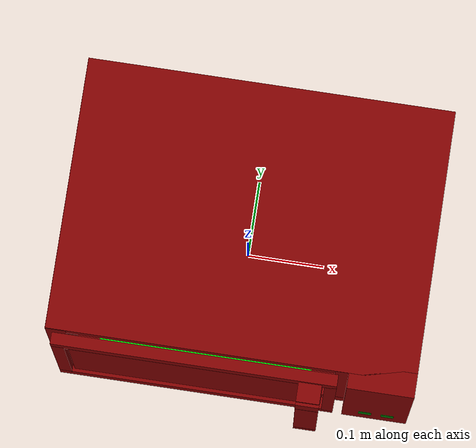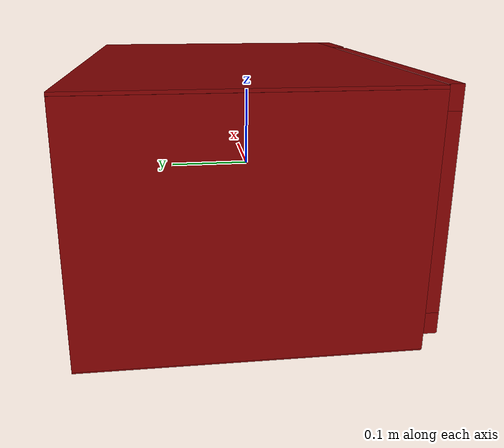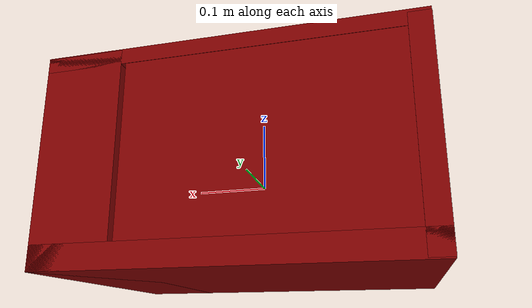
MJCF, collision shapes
<mujoco model="model">
  <compiler angle="radian"/>
  <asset>
    <mesh file="visuals/door.obj" name="door_vis"/>
    <mesh file="visuals/door_Clear.obj" name="door_Clear_vis"/>
    <mesh file="visuals/Body001.obj" name="Body001_vis"/>
    <mesh file="visuals/Disc001.obj" name="Disc001_vis"/>
    <texture file="visuals/T_BC001.png" name="Body001_material" type="2d"/>
    <material name="Body001_material" rgba="1 1 1 1.0" texture="Body001_material" shininess="0.2512328028678894" specular="0.3103448502657381"/>
    <texture file="visuals/T_BC001.png" name="door_material" type="2d"/>
    <material name="door_material" rgba="1 1 1 1.0" texture="door_material" shininess="0.2512328028678894" specular="0.3103448502657381"/>
    <texture file="visuals/T_BC001.png" name="door_Clear_material" type="2d"/>
    <material name="door_Clear_material" rgba="1 1 1 0.8322834968566895" texture="door_Clear_material" shininess="0.2512328028678894" specular="0.3103448502657381"/>
    <texture file="visuals/T_BC001.png" name="Disc001_material" type="2d"/>
    <material name="Disc001_material" rgba="1 1 1 1.0" texture="Disc001_material" shininess="0.2512328028678894" specular="0.3103448502657381"/>
  </asset>
  <default>
    <default class="visual">
      <geom conaffinity="0" contype="0" group="1" type="mesh"/>
    </default>
    <default class="collision">
      <geom group="0" rgba="0.5 0 0 0.5"/>
    </default>
    <default class="spawn">
      <geom group="0" rgba="1 1 1 0.5" contype="0" conaffinity="0"/>
      <site group="0" rgba="1 1 1 0.5"/>
    </default>
    <default class="region">
      <geom group="1" conaffinity="0" contype="0" rgba="0 1 0 0"/>
    </default>
  </default>
  <worldbody>
    <body>
      <body name="object">
        <geom class="collision" type="box" pos="0.21444171667099 -0.17627015709877014 -0.07014863193035126" size="0.008674788288772106 0.00039716094033792615 0.008611914701759815" quat="1.0 0.0 0.0 0.0" name="start_button" rgba="0.0 0.5 0 0.5"/>
        <geom class="collision" type="box" pos="0.1840675175189972 -0.17627015709877014 -0.06980408728122711" size="0.008596837520599365 0.00039477957761846483 0.008594755083322525" quat="1.0 0.0 0.0 0.0" name="stop_button" rgba="0.0 0.5 0 0.5"/>
        <geom class="collision" type="box" pos="-0.03944481909275055 0.012442776001989841 -0.09435480833053589" size="0.14449143409729004 0.14449143409729004 0.0016198419034481049" quat="1.0 0.0 0.0 0.0" name="tray" rgba="0 1 0 0.5"/>
        <geom mesh="Body001_vis" type="mesh" solimp="0.998 0.998 0.001" solref="0.001 1" density="100" friction="0.95 0.3 0.1" class="visual" material="Body001_material"/>
        <geom class="collision" type="box" pos="-0.2279750555753708 0.024643568322062492 -0.0009403529111295938" size="0.01348043605685234 0.1795244961977005 0.1370999813079834" quat="1.0 0.0 0.0 0.0"/>
        <geom class="collision" type="box" pos="0.18898452818393707 0.02464357577264309 -0.0004885747330263257" size="0.05247097462415695 0.1795244961977005 0.1393100768327713" quat="1.0 0.0 0.0 0.0"/>
        <geom class="collision" type="box" pos="0.00023945292923599482 0.024643568322062492 0.1295773833990097" size="0.24121606349945068 0.1795244961977005 0.0102212680503726" quat="1.0 0.0 0.0 0.0"/>
        <geom class="collision" type="box" pos="0.00023945292923599482 0.024643568322062492 -0.12354481220245361" size="0.24121606349945068 0.1795244961977005 0.016253849491477013" quat="1.0 0.0 0.0 0.0"/>
        <geom class="collision" type="box" pos="0.19755516946315765 -0.1586322784423828 0.005857005715370178" size="0.04390033334493637 0.016029980033636093 0.1339416205883026" quat="1.0 0.0 0.0 0.0"/>
        <geom class="collision" type="box" pos="-0.049361418932676315 0.1901172548532486 -0.0009403529111295938" size="0.01348043605685234 0.1795244961977005 0.1370999813079834" quat="0.7071068286895752 0.0 -0.0 -0.7071067690849304"/>
        <body name="door">
          <joint axis="0.0 0.0 1.0" pos="-0.2306995987892151 -0.16482298076152802 0.005739807616919279" limited="true" name="microjoint" range="-1.5707963267948966 0.0" type="hinge" damping="1" frictionloss="1" armature=".01" stiffness="0.05"/>
          <geom mesh="door_vis" type="mesh" solimp="0.998 0.998 0.001" solref="0.001 1" density="100" friction="0.95 0.3 0.1" class="visual" material="door_material"/>
          <geom class="collision" type="box" pos="-0.04522455111145973 -0.16691496968269348 0.12631475925445557" size="0.18625611066818237 0.007747205905616283 0.012893988750874996" quat="1.0 0.0 0.0 0.0"/>
          <geom class="collision" type="box" pos="-0.04522455111145973 -0.16691496968269348 -0.11457281559705734" size="0.18625611066818237 0.007747205905616283 0.012355508282780647" quat="1.0 0.0 0.0 0.0"/>
          <geom class="collision" type="box" pos="0.1332540363073349 -0.16691496968269348 0.00320283230394125" size="0.007829362526535988 0.007747205905616283 0.11479602009057999" quat="1.0 0.0 0.0 0.0"/>
          <geom class="collision" type="box" pos="-0.2230876088142395 -0.16691496968269348 0.004848049022257328" size="0.008393020369112492 0.007747205905616283 0.11352559179067612" quat="1.0 0.0 0.0 0.0"/>
          <geom class="collision" type="box" pos="0.10684141516685486 -0.2003488391637802 -0.11208666861057281" size="0.01529182493686676 0.0038424746599048376 0.007795459590852261" quat="1.0 0.0 0.0 0.0"/>
          <geom class="collision" type="box" pos="0.10684140026569366 -0.20060667395591736 0.106754370033741" size="0.01529182679951191 0.0035630043130367994 0.018888983875513077" quat="1.0 0.0 0.0 0.0"/>
          <geom class="collision" type="box" pos="0.10684137046337128 -0.186141237616539 0.12719783186912537" size="0.015291843563318253 0.013907542452216148 0.003843732411041856" quat="1.0 0.0 0.0 0.0"/>
          <geom class="collision" type="box" pos="0.10706574469804764 -0.18523572385311127 -0.11826881766319275" size="0.015115393325686455 0.013002094812691212 0.003748269286006689" quat="1.0 0.0 0.0 0.0"/>
          <geom class="collision" type="box" pos="0.10684141516685486 -0.20060527324676514 -0.008550564758479595" size="0.015291865915060043 0.0035630138590931892 0.09420935809612274" quat="1.0 0.0 0.0 0.0" name="door_handle"/>
          <body name="door_Clear">
            <geom mesh="door_Clear_vis" type="mesh" solimp="0.998 0.998 0.001" solref="0.001 1" density="100" friction="0.95 0.3 0.1" class="visual" material="door_Clear_material"/>
            <geom class="collision" type="box" pos="-0.0441853404045105 -0.16868124902248383 0.006185237318277359" size="0.16704565286636353 0.0017663013422861695 0.10468868911266327" quat="1.0 0.0 0.0 0.0"/>
          </body>
        </body>
        <body name="Disc001">
          <joint axis="0.0 0.0 -1.0" pos="-0.03878691419959068 0.012432841584086418 -0.09945744276046753" limited="false" name="Disc001_joint" range="0 360" type="hinge" damping="1" frictionloss="1" armature=".01" stiffness="0.05"/>
          <geom mesh="Disc001_vis" type="mesh" solimp="0.998 0.998 0.001" solref="0.001 1" density="100" friction="0.95 0.3 0.1" class="visual" material="Disc001_material"/>
          <geom class="collision" type="cylinder" pos="-0.03739500790834427 0.012864150106906891 -0.10127633810043335" size="0.14383506774902344 0.0037028081715106964" quat="1.0 0.0 0.0 0.0"/>
        </body>
        <geom class="region" name="reg_main" type="box" pos="0.0 0.014752952381968498 -1.1175870895385742e-08" size="0.24145549535751343 0.1894151270389557 0.13979864120483398"/>
        <geom class="region" name="reg_int" type="box" pos="-0.03859487175941467 0.01241997629404068 0.005995865911245346" size="0.1752108633518219 0.16542349010705948 0.11263617500662804"/>
      </body>
    </body>
  </worldbody>
  <actuator>
    <motor name="microjoint_actuator" joint="microjoint" gear="10"/>
    <motor name="Disc001_joint_actuator" joint="Disc001_joint" gear="10"/>
  </actuator>
</mujoco>
